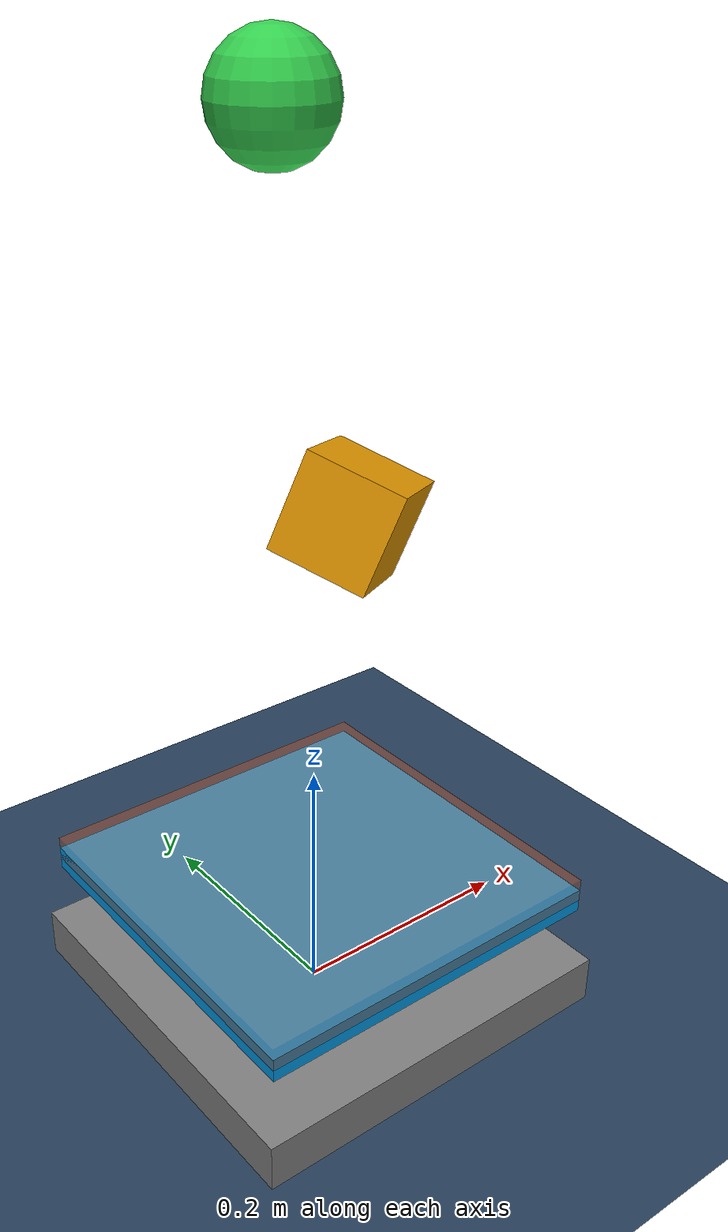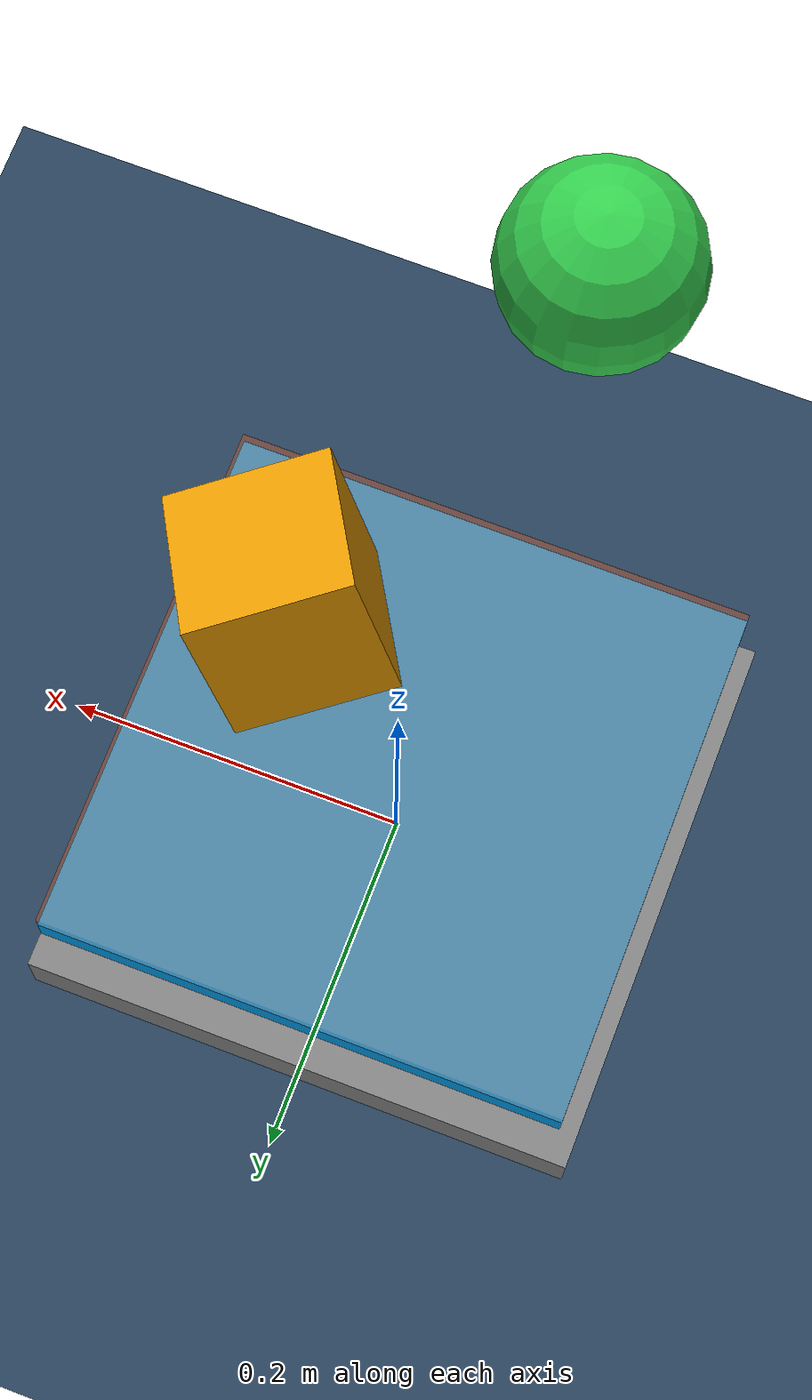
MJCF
<mujoco model="touch_sensor">
  <statistic center="0 0 0.1" extent="0.6" meansize=".05"/>

  <visual>
    <headlight diffuse="0.6 0.6 0.6" ambient="0.3 0.3 0.3" specular="0 0 0"/>
    <rgba haze="0.15 0.25 0.35 1"/>
    <global azimuth="-20" elevation="-20" ellipsoidinertia="true"/>
  </visual>

  <asset>
    <texture type="skybox" builtin="gradient" rgb1="0.3 0.5 0.7" rgb2="0 0 0" width="512" height="3072"/>
    <texture type="2d" name="groundplane" builtin="checker" mark="edge" rgb1="0.2 0.3 0.4" rgb2="0.1 0.2 0.3"
      markrgb="0.8 0.8 0.8" width="300" height="300"/>
    <material name="groundplane" texture="groundplane" texuniform="true" texrepeat="5 5" reflectance="0.2"/>
  </asset>

  <option gravity="0 0 -9.81" timestep="0.002"/>

  <worldbody>
    <light pos="0 0 1.5" dir="0 0 -1" directional="true"/>
    <geom name="floor" size="0 0 0.05" type="plane" material="groundplane"/>

    <!-- A spring-loaded weighing platform. The touch sensor sums the normal forces of all contacts
         on the platform body whose contact points fall inside the site volume. -->
    <geom name="base" type="box" pos="0 0 0.02" size="0.16 0.16 0.02" rgba="0.5 0.5 0.5 1"/>
    <body name="platform" pos="0 0 0.1">
      <joint name="spring" type="slide" axis="0 0 1" stiffness="2000" damping="20" range="-0.05 0.05"/>
      <geom name="plate" type="box" size="0.15 0.15 0.01" rgba="0 0.6 0.9 1" mass="0.5"/>
      <site name="touch_area" type="box" pos="0 0 0.01" size="0.15 0.15 0.01" rgba="1 0.3 0 0.3"/>
    </body>

    <!-- Objects that fall on the platform: 1 kg + 0.5 kg, i.e. about 14.7 N at rest. -->
    <body name="cube" pos="0.05 0.02 0.4" euler="10 20 30">
      <freejoint/>
      <geom name="cube" type="box" size="0.04 0.04 0.04" rgba="0.9 0.6 0 1" mass="1"/>
    </body>
    <body name="ball" pos="-0.06 -0.04 0.7">
      <freejoint/>
      <geom name="ball" type="sphere" size="0.04" rgba="0.2 0.8 0.3 1" mass="0.5"/>
    </body>
  </worldbody>

  <sensor>
    <touch name="touch" site="touch_area"/>
    <jointpos name="spring_pos" joint="spring"/>
  </sensor>
</mujoco>
